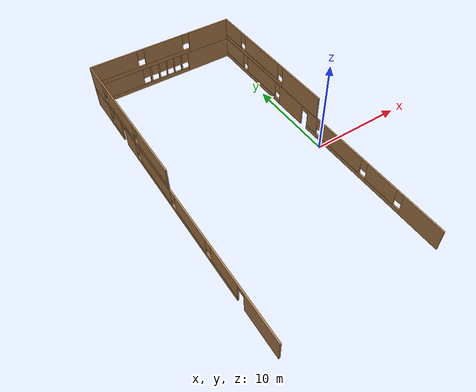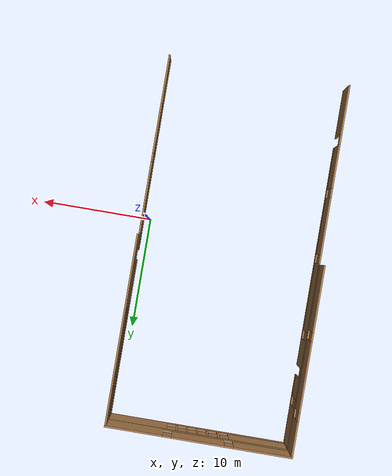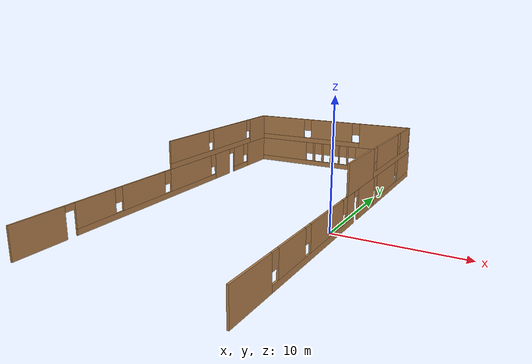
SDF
<sdf version="1.7">
 <model name="Floor_Plan_RS1">
  <pose>-35.0156 -19.3457 0 0 -0 0</pose>
  <link name="Wall_10">
   <pose>27.477 37.7444 0 0 -0 3.14159</pose>
   <visual name="Wall_10_Visual_0">
    <pose>-5.5452 0 1.25 0 -0 0</pose>
    <geometry><box><size>5.40959 0.15 2.5</size></box></geometry>
    <material>
     <script><uri>file://media/materials/scripts/gazebo.material</uri><name>Gazebo/Wood</name></script>
     <ambient>1 1 1 1</ambient>
    </material>
    <meta><layer>0</layer></meta>
   </visual>
   <collision name="Wall_10_Collision_0">
    <geometry><box><size>5.40959 0.15 2.5</size></box></geometry>
    <pose>-5.5452 0 1.25 0 -0 0</pose>
   </collision>
   <visual name="Wall_10_Visual_1">
    <pose>2.7048 0 0.25 0 -0 0</pose>
    <geometry><box><size>11.0904 0.15 0.5</size></box></geometry>
    <material>
     <script><uri>file://media/materials/scripts/gazebo.material</uri><name>Gazebo/Wood</name></script>
     <ambient>1 1 1 1</ambient>
    </material>
    <meta><layer>0</layer></meta>
   </visual>
   <collision name="Wall_10_Collision_1">
    <geometry><box><size>11.0904 0.15 0.5</size></box></geometry>
    <pose>2.7048 0 0.25 0 -0 0</pose>
   </collision>
   <visual name="Wall_10_Visual_2">
    <pose>-1.94818 0 1.5 0 -0 0</pose>
    <geometry><box><size>0.184446 0.15 2</size></box></geometry>
    <material>
     <script><uri>file://media/materials/scripts/gazebo.material</uri><name>Gazebo/Wood</name></script>
     <ambient>1 1 1 1</ambient>
    </material>
    <meta><layer>0</layer></meta>
   </visual>
   <collision name="Wall_10_Collision_2">
    <geometry><box><size>0.184446 0.15 2</size></box></geometry>
    <pose>-1.94818 0 1.5 0 -0 0</pose>
   </collision>
   <visual name="Wall_10_Visual_3">
    <pose>-0.994502 0 1.5 0 -0 0</pose>
    <geometry><box><size>0.122918 0.15 2</size></box></geometry>
    <material>
     <script><uri>file://media/materials/scripts/gazebo.material</uri><name>Gazebo/Wood</name></script>
     <ambient>1 1 1 1</ambient>
    </material>
    <meta><layer>0</layer></meta>
   </visual>
   <collision name="Wall_10_Collision_3">
    <geometry><box><size>0.122918 0.15 2</size></box></geometry>
    <pose>-0.994502 0 1.5 0 -0 0</pose>
   </collision>
   <visual name="Wall_10_Visual_4">
    <pose>-0.071584 0 1.5 0 -0 0</pose>
    <geometry><box><size>0.122918 0.15 2</size></box></geometry>
    <material>
     <script><uri>file://media/materials/scripts/gazebo.material</uri><name>Gazebo/Wood</name></script>
     <ambient>1 1 1 1</ambient>
    </material>
    <meta><layer>0</layer></meta>
   </visual>
   <collision name="Wall_10_Collision_4">
    <geometry><box><size>0.122918 0.15 2</size></box></geometry>
    <pose>-0.071584 0 1.5 0 -0 0</pose>
   </collision>
   <visual name="Wall_10_Visual_5">
    <pose>0.882098 0 1.5 0 -0 0</pose>
    <geometry><box><size>0.184447 0.15 2</size></box></geometry>
    <material>
     <script><uri>file://media/materials/scripts/gazebo.material</uri><name>Gazebo/Wood</name></script>
     <ambient>1 1 1 1</ambient>
    </material>
    <meta><layer>0</layer></meta>
   </visual>
   <collision name="Wall_10_Collision_5">
    <geometry><box><size>0.184447 0.15 2</size></box></geometry>
    <pose>0.882098 0 1.5 0 -0 0</pose>
   </collision>
   <visual name="Wall_10_Visual_6">
    <pose>1.88137 0 1.5 0 -0 0</pose>
    <geometry><box><size>0.2141 0.15 2</size></box></geometry>
    <material>
     <script><uri>file://media/materials/scripts/gazebo.material</uri><name>Gazebo/Wood</name></script>
     <ambient>1 1 1 1</ambient>
    </material>
    <meta><layer>0</layer></meta>
   </visual>
   <collision name="Wall_10_Collision_6">
    <geometry><box><size>0.2141 0.15 2</size></box></geometry>
    <pose>1.88137 0 1.5 0 -0 0</pose>
   </collision>
   <visual name="Wall_10_Visual_7">
    <pose>5.51921 0 1.5 0 -0 0</pose>
    <geometry><box><size>5.46158 0.15 2</size></box></geometry>
    <material>
     <script><uri>file://media/materials/scripts/gazebo.material</uri><name>Gazebo/Wood</name></script>
     <ambient>1 1 1 1</ambient>
    </material>
    <meta><layer>0</layer></meta>
   </visual>
   <collision name="Wall_10_Collision_7">
    <geometry><box><size>5.46158 0.15 2</size></box></geometry>
    <pose>5.51921 0 1.5 0 -0 0</pose>
   </collision>
   <visual name="Wall_10_Visual_8">
    <pose>-2.44041 0 1.9 0 -0 0</pose>
    <geometry><box><size>0.8 0.15 1.2</size></box></geometry>
    <material>
     <script><uri>file://media/materials/scripts/gazebo.material</uri><name>Gazebo/Wood</name></script>
     <ambient>1 1 1 1</ambient>
    </material>
    <meta><layer>0</layer></meta>
   </visual>
   <collision name="Wall_10_Collision_8">
    <geometry><box><size>0.8 0.15 1.2</size></box></geometry>
    <pose>-2.44041 0 1.9 0 -0 0</pose>
   </collision>
   <visual name="Wall_10_Visual_9">
    <pose>-1.45596 0 1.9 0 -0 0</pose>
    <geometry><box><size>0.8 0.15 1.2</size></box></geometry>
    <material>
     <script><uri>file://media/materials/scripts/gazebo.material</uri><name>Gazebo/Wood</name></script>
     <ambient>1 1 1 1</ambient>
    </material>
    <meta><layer>0</layer></meta>
   </visual>
   <collision name="Wall_10_Collision_9">
    <geometry><box><size>0.8 0.15 1.2</size></box></geometry>
    <pose>-1.45596 0 1.9 0 -0 0</pose>
   </collision>
   <visual name="Wall_10_Visual_10">
    <pose>-0.533043 0 1.9 0 -0 0</pose>
    <geometry><box><size>0.8 0.15 1.2</size></box></geometry>
    <material>
     <script><uri>file://media/materials/scripts/gazebo.material</uri><name>Gazebo/Wood</name></script>
     <ambient>1 1 1 1</ambient>
    </material>
    <meta><layer>0</layer></meta>
   </visual>
   <collision name="Wall_10_Collision_10">
    <geometry><box><size>0.8 0.15 1.2</size></box></geometry>
    <pose>-0.533043 0 1.9 0 -0 0</pose>
   </collision>
   <visual name="Wall_10_Visual_11">
    <pose>0.389875 0 1.9 0 -0 0</pose>
    <geometry><box><size>0.8 0.15 1.2</size></box></geometry>
    <material>
     <script><uri>file://media/materials/scripts/gazebo.material</uri><name>Gazebo/Wood</name></script>
     <ambient>1 1 1 1</ambient>
    </material>
    <meta><layer>0</layer></meta>
   </visual>
   <collision name="Wall_10_Collision_11">
    <geometry><box><size>0.8 0.15 1.2</size></box></geometry>
    <pose>0.389875 0 1.9 0 -0 0</pose>
   </collision>
   <visual name="Wall_10_Visual_12">
    <pose>1.37432 0 1.9 0 -0 0</pose>
    <geometry><box><size>0.8 0.15 1.2</size></box></geometry>
    <material>
     <script><uri>file://media/materials/scripts/gazebo.material</uri><name>Gazebo/Wood</name></script>
     <ambient>1 1 1 1</ambient>
    </material>
    <meta><layer>0</layer></meta>
   </visual>
   <collision name="Wall_10_Collision_12">
    <geometry><box><size>0.8 0.15 1.2</size></box></geometry>
    <pose>1.37432 0 1.9 0 -0 0</pose>
   </collision>
   <visual name="Wall_10_Visual_13">
    <pose>2.38842 0 1.9 0 -0 0</pose>
    <geometry><box><size>0.8 0.15 1.2</size></box></geometry>
    <material>
     <script><uri>file://media/materials/scripts/gazebo.material</uri><name>Gazebo/Wood</name></script>
     <ambient>1 1 1 1</ambient>
    </material>
    <meta><layer>0</layer></meta>
   </visual>
   <collision name="Wall_10_Collision_13">
    <geometry><box><size>0.8 0.15 1.2</size></box></geometry>
    <pose>2.38842 0 1.9 0 -0 0</pose>
   </collision>
  </link>
  <link name="Wall_11">
   <pose>19.3021 21.1944 0 0 -0 -1.5708</pose>
   <visual name="Wall_11_Visual_0">
    <pose>-14.7156 0 1.25 0 -0 0</pose>
    <geometry><box><size>3.81882 0.15 2.5</size></box></geometry>
    <material>
     <script><uri>file://media/materials/scripts/gazebo.material</uri><name>Gazebo/Wood</name></script>
     <ambient>1 1 1 1</ambient>
    </material>
    <meta><layer>0</layer></meta>
   </visual>
   <collision name="Wall_11_Collision_0">
    <geometry><box><size>3.81882 0.15 2.5</size></box></geometry>
    <pose>-14.7156 0 1.25 0 -0 0</pose>
   </collision>
   <visual name="Wall_11_Visual_1">
    <pose>-7.90963 0 1.25 0 -0 0</pose>
    <geometry><box><size>2.50541 0.15 2.5</size></box></geometry>
    <material>
     <script><uri>file://media/materials/scripts/gazebo.material</uri><name>Gazebo/Wood</name></script>
     <ambient>1 1 1 1</ambient>
    </material>
    <meta><layer>0</layer></meta>
   </visual>
   <collision name="Wall_11_Collision_1">
    <geometry><box><size>2.50541 0.15 2.5</size></box></geometry>
    <pose>-7.90963 0 1.25 0 -0 0</pose>
   </collision>
   <visual name="Wall_11_Visual_2">
    <pose>14.3708 0 1.25 0 -0 0</pose>
    <geometry><box><size>4.50842 0.15 2.5</size></box></geometry>
    <material>
     <script><uri>file://media/materials/scripts/gazebo.material</uri><name>Gazebo/Wood</name></script>
     <ambient>1 1 1 1</ambient>
    </material>
    <meta><layer>0</layer></meta>
   </visual>
   <collision name="Wall_11_Collision_2">
    <geometry><box><size>4.50842 0.15 2.5</size></box></geometry>
    <pose>14.3708 0 1.25 0 -0 0</pose>
   </collision>
   <visual name="Wall_11_Visual_3">
    <pose>-11.4343 0 0.25 0 -0 0</pose>
    <geometry><box><size>2.74384 0.15 0.5</size></box></geometry>
    <material>
     <script><uri>file://media/materials/scripts/gazebo.material</uri><name>Gazebo/Wood</name></script>
     <ambient>1 1 1 1</ambient>
    </material>
    <meta><layer>0</layer></meta>
   </visual>
   <collision name="Wall_11_Collision_3">
    <geometry><box><size>2.74384 0.15 0.5</size></box></geometry>
    <pose>-11.4343 0 0.25 0 -0 0</pose>
   </collision>
   <visual name="Wall_11_Visual_4">
    <pose>2.27982 0 0.25 0 -0 0</pose>
    <geometry><box><size>17.8735 0.15 0.5</size></box></geometry>
    <material>
     <script><uri>file://media/materials/scripts/gazebo.material</uri><name>Gazebo/Wood</name></script>
     <ambient>1 1 1 1</ambient>
    </material>
    <meta><layer>0</layer></meta>
   </visual>
   <collision name="Wall_11_Collision_4">
    <geometry><box><size>17.8735 0.15 0.5</size></box></geometry>
    <pose>2.27982 0 0.25 0 -0 0</pose>
   </collision>
   <visual name="Wall_11_Visual_5">
    <pose>-11.0343 0 1.5 0 -0 0</pose>
    <geometry><box><size>1.94384 0.15 2</size></box></geometry>
    <material>
     <script><uri>file://media/materials/scripts/gazebo.material</uri><name>Gazebo/Wood</name></script>
     <ambient>1 1 1 1</ambient>
    </material>
    <meta><layer>0</layer></meta>
   </visual>
   <collision name="Wall_11_Collision_5">
    <geometry><box><size>1.94384 0.15 2</size></box></geometry>
    <pose>-11.0343 0 1.5 0 -0 0</pose>
   </collision>
   <visual name="Wall_11_Visual_6">
    <pose>-11.0343 0 1.5 0 -0 0</pose>
    <geometry><box><size>1.94384 0.15 2</size></box></geometry>
    <material>
     <script><uri>file://media/materials/scripts/gazebo.material</uri><name>Gazebo/Wood</name></script>
     <ambient>1 1 1 1</ambient>
    </material>
    <meta><layer>0</layer></meta>
   </visual>
   <collision name="Wall_11_Collision_6">
    <geometry><box><size>1.94384 0.15 2</size></box></geometry>
    <pose>-11.0343 0 1.5 0 -0 0</pose>
   </collision>
   <visual name="Wall_11_Visual_7">
    <pose>-2.71707 0 1.5 0 -0 0</pose>
    <geometry><box><size>6.27973 0.15 2</size></box></geometry>
    <material>
     <script><uri>file://media/materials/scripts/gazebo.material</uri><name>Gazebo/Wood</name></script>
     <ambient>1 1 1 1</ambient>
    </material>
    <meta><layer>0</layer></meta>
   </visual>
   <collision name="Wall_11_Collision_7">
    <geometry><box><size>6.27973 0.15 2</size></box></geometry>
    <pose>-2.71707 0 1.5 0 -0 0</pose>
   </collision>
   <visual name="Wall_11_Visual_8">
    <pose>3.83674 0 1.5 0 -0 0</pose>
    <geometry><box><size>5.22788 0.15 2</size></box></geometry>
    <material>
     <script><uri>file://media/materials/scripts/gazebo.material</uri><name>Gazebo/Wood</name></script>
     <ambient>1 1 1 1</ambient>
    </material>
    <meta><layer>0</layer></meta>
   </visual>
   <collision name="Wall_11_Collision_8">
    <geometry><box><size>5.22788 0.15 2</size></box></geometry>
    <pose>3.83674 0 1.5 0 -0 0</pose>
   </collision>
   <visual name="Wall_11_Visual_9">
    <pose>9.23363 0 1.5 0 -0 0</pose>
    <geometry><box><size>3.9659 0.15 2</size></box></geometry>
    <material>
     <script><uri>file://media/materials/scripts/gazebo.material</uri><name>Gazebo/Wood</name></script>
     <ambient>1 1 1 1</ambient>
    </material>
    <meta><layer>0</layer></meta>
   </visual>
   <collision name="Wall_11_Collision_9">
    <geometry><box><size>3.9659 0.15 2</size></box></geometry>
    <pose>9.23363 0 1.5 0 -0 0</pose>
   </collision>
   <visual name="Wall_11_Visual_10">
    <pose>-12.4062 0 1.9 0 -0 0</pose>
    <geometry><box><size>0.8 0.15 1.2</size></box></geometry>
    <material>
     <script><uri>file://media/materials/scripts/gazebo.material</uri><name>Gazebo/Wood</name></script>
     <ambient>1 1 1 1</ambient>
    </material>
    <meta><layer>0</layer></meta>
   </visual>
   <collision name="Wall_11_Collision_10">
    <geometry><box><size>0.8 0.15 1.2</size></box></geometry>
    <pose>-12.4062 0 1.9 0 -0 0</pose>
   </collision>
   <visual name="Wall_11_Visual_11">
    <pose>-6.25693 0 1.9 0 -0 0</pose>
    <geometry><box><size>0.8 0.15 1.2</size></box></geometry>
    <material>
     <script><uri>file://media/materials/scripts/gazebo.material</uri><name>Gazebo/Wood</name></script>
     <ambient>1 1 1 1</ambient>
    </material>
    <meta><layer>0</layer></meta>
   </visual>
   <collision name="Wall_11_Collision_11">
    <geometry><box><size>0.8 0.15 1.2</size></box></geometry>
    <pose>-6.25693 0 1.9 0 -0 0</pose>
   </collision>
   <visual name="Wall_11_Visual_12">
    <pose>0.822797 0 1.9 0 -0 0</pose>
    <geometry><box><size>0.8 0.15 1.2</size></box></geometry>
    <material>
     <script><uri>file://media/materials/scripts/gazebo.material</uri><name>Gazebo/Wood</name></script>
     <ambient>1 1 1 1</ambient>
    </material>
    <meta><layer>0</layer></meta>
   </visual>
   <collision name="Wall_11_Collision_12">
    <geometry><box><size>0.8 0.15 1.2</size></box></geometry>
    <pose>0.822797 0 1.9 0 -0 0</pose>
   </collision>
   <visual name="Wall_11_Visual_13">
    <pose>6.85068 0 1.9 0 -0 0</pose>
    <geometry><box><size>0.8 0.15 1.2</size></box></geometry>
    <material>
     <script><uri>file://media/materials/scripts/gazebo.material</uri><name>Gazebo/Wood</name></script>
     <ambient>1 1 1 1</ambient>
    </material>
    <meta><layer>0</layer></meta>
   </visual>
   <collision name="Wall_11_Collision_13">
    <geometry><box><size>0.8 0.15 1.2</size></box></geometry>
    <pose>6.85068 0 1.9 0 -0 0</pose>
   </collision>
   <visual name="Wall_11_Visual_14">
    <pose>-9.61233 0 2.25 0 -0 0</pose>
    <geometry><box><size>0.9 0.15 0.5</size></box></geometry>
    <material>
     <script><uri>file://media/materials/scripts/gazebo.material</uri><name>Gazebo/Wood</name></script>
     <ambient>1 1 1 1</ambient>
    </material>
    <meta><layer>0</layer></meta>
   </visual>
   <collision name="Wall_11_Collision_14">
    <geometry><box><size>0.9 0.15 0.5</size></box></geometry>
    <pose>-9.61233 0 2.25 0 -0 0</pose>
   </collision>
   <visual name="Wall_11_Visual_15">
    <pose>-9.61233 0 2.25 0 -0 0</pose>
    <geometry><box><size>0.9 0.15 0.5</size></box></geometry>
    <material>
     <script><uri>file://media/materials/scripts/gazebo.material</uri><name>Gazebo/Wood</name></script>
     <ambient>1 1 1 1</ambient>
    </material>
    <meta><layer>0</layer></meta>
   </visual>
   <collision name="Wall_11_Collision_15">
    <geometry><box><size>0.9 0.15 0.5</size></box></geometry>
    <pose>-9.61233 0 2.25 0 -0 0</pose>
   </collision>
   <visual name="Wall_11_Visual_16">
    <pose>11.6666 0 2.25 0 -0 0</pose>
    <geometry><box><size>0.9 0.15 0.5</size></box></geometry>
    <material>
     <script><uri>file://media/materials/scripts/gazebo.material</uri><name>Gazebo/Wood</name></script>
     <ambient>1 1 1 1</ambient>
    </material>
    <meta><layer>0</layer></meta>
   </visual>
   <collision name="Wall_11_Collision_16">
    <geometry><box><size>0.9 0.15 0.5</size></box></geometry>
    <pose>11.6666 0 2.25 0 -0 0</pose>
   </collision>
  </link>
  <link name="Wall_13">
   <pose>35.6521 21.3194 0 0 -0 1.5708</pose>
   <visual name="Wall_13_Visual_0">
    <pose>-14.5211 0 1.25 0 -0 0</pose>
    <geometry><box><size>4.45776 0.15 2.5</size></box></geometry>
    <material>
     <script><uri>file://media/materials/scripts/gazebo.material</uri><name>Gazebo/Wood</name></script>
     <ambient>1 1 1 1</ambient>
    </material>
    <meta><layer>0</layer></meta>
   </visual>
   <collision name="Wall_13_Collision_0">
    <geometry><box><size>4.45776 0.15 2.5</size></box></geometry>
    <pose>-14.5211 0 1.25 0 -0 0</pose>
   </collision>
   <visual name="Wall_13_Visual_1">
    <pose>3.79024 0 1.25 0 -0 0</pose>
    <geometry><box><size>3.82612 0.15 2.5</size></box></geometry>
    <material>
     <script><uri>file://media/materials/scripts/gazebo.material</uri><name>Gazebo/Wood</name></script>
     <ambient>1 1 1 1</ambient>
    </material>
    <meta><layer>0</layer></meta>
   </visual>
   <collision name="Wall_13_Collision_1">
    <geometry><box><size>3.82612 0.15 2.5</size></box></geometry>
    <pose>3.79024 0 1.25 0 -0 0</pose>
   </collision>
   <visual name="Wall_13_Visual_2">
    <pose>-5.65753 0 0.25 0 -0 0</pose>
    <geometry><box><size>13.2694 0.15 0.5</size></box></geometry>
    <material>
     <script><uri>file://media/materials/scripts/gazebo.material</uri><name>Gazebo/Wood</name></script>
     <ambient>1 1 1 1</ambient>
    </material>
    <meta><layer>0</layer></meta>
   </visual>
   <collision name="Wall_13_Collision_2">
    <geometry><box><size>13.2694 0.15 0.5</size></box></geometry>
    <pose>-5.65753 0 0.25 0 -0 0</pose>
   </collision>
   <visual name="Wall_13_Visual_3">
    <pose>11.2266 0 0.25 0 -0 0</pose>
    <geometry><box><size>11.0467 0.15 0.5</size></box></geometry>
    <material>
     <script><uri>file://media/materials/scripts/gazebo.material</uri><name>Gazebo/Wood</name></script>
     <ambient>1 1 1 1</ambient>
    </material>
    <meta><layer>0</layer></meta>
   </visual>
   <collision name="Wall_13_Collision_3">
    <geometry><box><size>11.0467 0.15 0.5</size></box></geometry>
    <pose>11.2266 0 0.25 0 -0 0</pose>
   </collision>
   <visual name="Wall_13_Visual_4">
    <pose>-9.66718 0 1.5 0 -0 0</pose>
    <geometry><box><size>3.65011 0.15 2</size></box></geometry>
    <material>
     <script><uri>file://media/materials/scripts/gazebo.material</uri><name>Gazebo/Wood</name></script>
     <ambient>1 1 1 1</ambient>
    </material>
    <meta><layer>0</layer></meta>
   </visual>
   <collision name="Wall_13_Collision_4">
    <geometry><box><size>3.65011 0.15 2</size></box></geometry>
    <pose>-9.66718 0 1.5 0 -0 0</pose>
   </collision>
   <visual name="Wall_13_Visual_5">
    <pose>-4.20568 0 1.5 0 -0 0</pose>
    <geometry><box><size>5.67289 0.15 2</size></box></geometry>
    <material>
     <script><uri>file://media/materials/scripts/gazebo.material</uri><name>Gazebo/Wood</name></script>
     <ambient>1 1 1 1</ambient>
    </material>
    <meta><layer>0</layer></meta>
   </visual>
   <collision name="Wall_13_Collision_5">
    <geometry><box><size>5.67289 0.15 2</size></box></geometry>
    <pose>-4.20568 0 1.5 0 -0 0</pose>
   </collision>
   <visual name="Wall_13_Visual_6">
    <pose>0.203974 0 1.5 0 -0 0</pose>
    <geometry><box><size>1.54642 0.15 2</size></box></geometry>
    <material>
     <script><uri>file://media/materials/scripts/gazebo.material</uri><name>Gazebo/Wood</name></script>
     <ambient>1 1 1 1</ambient>
    </material>
    <meta><layer>0</layer></meta>
   </visual>
   <collision name="Wall_13_Collision_6">
    <geometry><box><size>1.54642 0.15 2</size></box></geometry>
    <pose>0.203974 0 1.5 0 -0 0</pose>
   </collision>
   <visual name="Wall_13_Visual_7">
    <pose>0.203974 0 1.5 0 -0 0</pose>
    <geometry><box><size>1.54642 0.15 2</size></box></geometry>
    <material>
     <script><uri>file://media/materials/scripts/gazebo.material</uri><name>Gazebo/Wood</name></script>
     <ambient>1 1 1 1</ambient>
    </material>
    <meta><layer>0</layer></meta>
   </visual>
   <collision name="Wall_13_Collision_7">
    <geometry><box><size>1.54642 0.15 2</size></box></geometry>
    <pose>0.203974 0 1.5 0 -0 0</pose>
   </collision>
   <visual name="Wall_13_Visual_8">
    <pose>9.21046 0 1.5 0 -0 0</pose>
    <geometry><box><size>5.41432 0.15 2</size></box></geometry>
    <material>
     <script><uri>file://media/materials/scripts/gazebo.material</uri><name>Gazebo/Wood</name></script>
     <ambient>1 1 1 1</ambient>
    </material>
    <meta><layer>0</layer></meta>
   </visual>
   <collision name="Wall_13_Collision_8">
    <geometry><box><size>5.41432 0.15 2</size></box></geometry>
    <pose>9.21046 0 1.5 0 -0 0</pose>
   </collision>
   <visual name="Wall_13_Visual_9">
    <pose>14.7338 0 1.5 0 -0 0</pose>
    <geometry><box><size>4.03238 0.15 2</size></box></geometry>
    <material>
     <script><uri>file://media/materials/scripts/gazebo.material</uri><name>Gazebo/Wood</name></script>
     <ambient>1 1 1 1</ambient>
    </material>
    <meta><layer>0</layer></meta>
   </visual>
   <collision name="Wall_13_Collision_9">
    <geometry><box><size>4.03238 0.15 2</size></box></geometry>
    <pose>14.7338 0 1.5 0 -0 0</pose>
   </collision>
   <visual name="Wall_13_Visual_10">
    <pose>-11.8922 0 1.9 0 -0 0</pose>
    <geometry><box><size>0.8 0.15 1.2</size></box></geometry>
    <material>
     <script><uri>file://media/materials/scripts/gazebo.material</uri><name>Gazebo/Wood</name></script>
     <ambient>1 1 1 1</ambient>
    </material>
    <meta><layer>0</layer></meta>
   </visual>
   <collision name="Wall_13_Collision_10">
    <geometry><box><size>0.8 0.15 1.2</size></box></geometry>
    <pose>-11.8922 0 1.9 0 -0 0</pose>
   </collision>
   <visual name="Wall_13_Visual_11">
    <pose>6.1033 0 1.9 0 -0 0</pose>
    <geometry><box><size>0.8 0.15 1.2</size></box></geometry>
    <material>
     <script><uri>file://media/materials/scripts/gazebo.material</uri><name>Gazebo/Wood</name></script>
     <ambient>1 1 1 1</ambient>
    </material>
    <meta><layer>0</layer></meta>
   </visual>
   <collision name="Wall_13_Collision_11">
    <geometry><box><size>0.8 0.15 1.2</size></box></geometry>
    <pose>6.1033 0 1.9 0 -0 0</pose>
   </collision>
   <visual name="Wall_13_Visual_12">
    <pose>-7.44213 0 1.9 0 -0 0</pose>
    <geometry><box><size>0.8 0.15 1.2</size></box></geometry>
    <material>
     <script><uri>file://media/materials/scripts/gazebo.material</uri><name>Gazebo/Wood</name></script>
     <ambient>1 1 1 1</ambient>
    </material>
    <meta><layer>0</layer></meta>
   </visual>
   <collision name="Wall_13_Collision_12">
    <geometry><box><size>0.8 0.15 1.2</size></box></geometry>
    <pose>-7.44213 0 1.9 0 -0 0</pose>
   </collision>
   <visual name="Wall_13_Visual_13">
    <pose>-0.969234 0 1.9 0 -0 0</pose>
    <geometry><box><size>0.8 0.15 1.2</size></box></geometry>
    <material>
     <script><uri>file://media/materials/scripts/gazebo.material</uri><name>Gazebo/Wood</name></script>
     <ambient>1 1 1 1</ambient>
    </material>
    <meta><layer>0</layer></meta>
   </visual>
   <collision name="Wall_13_Collision_13">
    <geometry><box><size>0.8 0.15 1.2</size></box></geometry>
    <pose>-0.969234 0 1.9 0 -0 0</pose>
   </collision>
   <visual name="Wall_13_Visual_14">
    <pose>12.3176 0 1.9 0 -0 0</pose>
    <geometry><box><size>0.8 0.15 1.2</size></box></geometry>
    <material>
     <script><uri>file://media/materials/scripts/gazebo.material</uri><name>Gazebo/Wood</name></script>
     <ambient>1 1 1 1</ambient>
    </material>
    <meta><layer>0</layer></meta>
   </visual>
   <collision name="Wall_13_Collision_14">
    <geometry><box><size>0.8 0.15 1.2</size></box></geometry>
    <pose>12.3176 0 1.9 0 -0 0</pose>
   </collision>
   <visual name="Wall_13_Visual_15">
    <pose>1.42718 0 2.25 0 -0 0</pose>
    <geometry><box><size>0.9 0.15 0.5</size></box></geometry>
    <material>
     <script><uri>file://media/materials/scripts/gazebo.material</uri><name>Gazebo/Wood</name></script>
     <ambient>1 1 1 1</ambient>
    </material>
    <meta><layer>0</layer></meta>
   </visual>
   <collision name="Wall_13_Collision_15">
    <geometry><box><size>0.9 0.15 0.5</size></box></geometry>
    <pose>1.42718 0 2.25 0 -0 0</pose>
   </collision>
   <visual name="Wall_13_Visual_16">
    <pose>1.42718 0 2.25 0 -0 0</pose>
    <geometry><box><size>0.9 0.15 0.5</size></box></geometry>
    <material>
     <script><uri>file://media/materials/scripts/gazebo.material</uri><name>Gazebo/Wood</name></script>
     <ambient>1 1 1 1</ambient>
    </material>
    <meta><layer>0</layer></meta>
   </visual>
   <collision name="Wall_13_Collision_16">
    <geometry><box><size>0.9 0.15 0.5</size></box></geometry>
    <pose>1.42718 0 2.25 0 -0 0</pose>
   </collision>
  </link>
  <link name="Wall_21">
   <pose>27.477 37.7444 2.5 0 -0 3.14159</pose>
   <visual name="Wall_21_Visual_0">
    <pose>-5.70716 0 1.25 0 -0 0</pose>
    <geometry><box><size>5.08567 0.15 2.5</size></box></geometry>
    <material>
     <script><uri>file://media/materials/scripts/gazebo.material</uri><name>Gazebo/Wood</name></script>
     <ambient>1 1 1 1</ambient>
    </material>
    <meta><layer>1</layer></meta>
   </visual>
   <collision name="Wall_21_Collision_0">
    <geometry><box><size>5.08567 0.15 2.5</size></box></geometry>
    <pose>-5.70716 0 1.25 0 -0 0</pose>
   </collision>
   <visual name="Wall_21_Visual_1">
    <pose>2.54284 0 0.25 0 -0 0</pose>
    <geometry><box><size>11.4143 0.15 0.5</size></box></geometry>
    <material>
     <script><uri>file://media/materials/scripts/gazebo.material</uri><name>Gazebo/Wood</name></script>
     <ambient>1 1 1 1</ambient>
    </material>
    <meta><layer>1</layer></meta>
   </visual>
   <collision name="Wall_21_Collision_1">
    <geometry><box><size>11.4143 0.15 0.5</size></box></geometry>
    <pose>2.54284 0 0.25 0 -0 0</pose>
   </collision>
   <visual name="Wall_21_Visual_2">
    <pose>-0.04268 0 1.5 0 -0 0</pose>
    <geometry><box><size>4.6433 0.15 2</size></box></geometry>
    <material>
     <script><uri>file://media/materials/scripts/gazebo.material</uri><name>Gazebo/Wood</name></script>
     <ambient>1 1 1 1</ambient>
    </material>
    <meta><layer>1</layer></meta>
   </visual>
   <collision name="Wall_21_Collision_2">
    <geometry><box><size>4.6433 0.15 2</size></box></geometry>
    <pose>-0.04268 0 1.5 0 -0 0</pose>
   </collision>
   <visual name="Wall_21_Visual_3">
    <pose>5.66448 0 1.5 0 -0 0</pose>
    <geometry><box><size>5.17103 0.15 2</size></box></geometry>
    <material>
     <script><uri>file://media/materials/scripts/gazebo.material</uri><name>Gazebo/Wood</name></script>
     <ambient>1 1 1 1</ambient>
    </material>
    <meta><layer>1</layer></meta>
   </visual>
   <collision name="Wall_21_Collision_3">
    <geometry><box><size>5.17103 0.15 2</size></box></geometry>
    <pose>5.66448 0 1.5 0 -0 0</pose>
   </collision>
   <visual name="Wall_21_Visual_4">
    <pose>-2.76433 0 1.9 0 -0 0</pose>
    <geometry><box><size>0.8 0.15 1.2</size></box></geometry>
    <material>
     <script><uri>file://media/materials/scripts/gazebo.material</uri><name>Gazebo/Wood</name></script>
     <ambient>1 1 1 1</ambient>
    </material>
    <meta><layer>1</layer></meta>
   </visual>
   <collision name="Wall_21_Collision_4">
    <geometry><box><size>0.8 0.15 1.2</size></box></geometry>
    <pose>-2.76433 0 1.9 0 -0 0</pose>
   </collision>
   <visual name="Wall_21_Visual_5">
    <pose>2.67897 0 1.9 0 -0 0</pose>
    <geometry><box><size>0.8 0.15 1.2</size></box></geometry>
    <material>
     <script><uri>file://media/materials/scripts/gazebo.material</uri><name>Gazebo/Wood</name></script>
     <ambient>1 1 1 1</ambient>
    </material>
    <meta><layer>1</layer></meta>
   </visual>
   <collision name="Wall_21_Collision_5">
    <geometry><box><size>0.8 0.15 1.2</size></box></geometry>
    <pose>2.67897 0 1.9 0 -0 0</pose>
   </collision>
  </link>
  <link name="Wall_22">
   <pose>19.2941 29.3615 2.5 0 -0 -1.57174</pose>
   <visual name="Wall_22_Visual_0">
    <pose>-6.85779 0 1.25 0 -0 0</pose>
    <geometry><box><size>3.20027 0.15 2.5</size></box></geometry>
    <material>
     <script><uri>file://media/materials/scripts/gazebo.material</uri><name>Gazebo/Wood</name></script>
     <ambient>1 1 1 1</ambient>
    </material>
    <meta><layer>1</layer></meta>
   </visual>
   <collision name="Wall_22_Collision_0">
    <geometry><box><size>3.20027 0.15 2.5</size></box></geometry>
    <pose>-6.85779 0 1.25 0 -0 0</pose>
   </collision>
   <visual name="Wall_22_Visual_1">
    <pose>1.60013 0 0.25 0 -0 0</pose>
    <geometry><box><size>13.7156 0.15 0.5</size></box></geometry>
    <material>
     <script><uri>file://media/materials/scripts/gazebo.material</uri><name>Gazebo/Wood</name></script>
     <ambient>1 1 1 1</ambient>
    </material>
    <meta><layer>1</layer></meta>
   </visual>
   <collision name="Wall_22_Collision_1">
    <geometry><box><size>13.7156 0.15 0.5</size></box></geometry>
    <pose>1.60013 0 0.25 0 -0 0</pose>
   </collision>
   <visual name="Wall_22_Visual_2">
    <pose>-1.34512 0 1.5 0 -0 0</pose>
    <geometry><box><size>6.22506 0.15 2</size></box></geometry>
    <material>
     <script><uri>file://media/materials/scripts/gazebo.material</uri><name>Gazebo/Wood</name></script>
     <ambient>1 1 1 1</ambient>
    </material>
    <meta><layer>1</layer></meta>
   </visual>
   <collision name="Wall_22_Collision_2">
    <geometry><box><size>6.22506 0.15 2</size></box></geometry>
    <pose>-1.34512 0 1.5 0 -0 0</pose>
   </collision>
   <visual name="Wall_22_Visual_3">
    <pose>5.51267 0 1.5 0 -0 0</pose>
    <geometry><box><size>5.89051 0.15 2</size></box></geometry>
    <material>
     <script><uri>file://media/materials/scripts/gazebo.material</uri><name>Gazebo/Wood</name></script>
     <ambient>1 1 1 1</ambient>
    </material>
    <meta><layer>1</layer></meta>
   </visual>
   <collision name="Wall_22_Collision_3">
    <geometry><box><size>5.89051 0.15 2</size></box></geometry>
    <pose>5.51267 0 1.5 0 -0 0</pose>
   </collision>
   <visual name="Wall_22_Visual_4">
    <pose>-4.85765 0 1.9 0 -0 0</pose>
    <geometry><box><size>0.8 0.15 1.2</size></box></geometry>
    <material>
     <script><uri>file://media/materials/scripts/gazebo.material</uri><name>Gazebo/Wood</name></script>
     <ambient>1 1 1 1</ambient>
    </material>
    <meta><layer>1</layer></meta>
   </visual>
   <collision name="Wall_22_Collision_4">
    <geometry><box><size>0.8 0.15 1.2</size></box></geometry>
    <pose>-4.85765 0 1.9 0 -0 0</pose>
   </collision>
   <visual name="Wall_22_Visual_5">
    <pose>2.16741 0 1.9 0 -0 0</pose>
    <geometry><box><size>0.8 0.15 1.2</size></box></geometry>
    <material>
     <script><uri>file://media/materials/scripts/gazebo.material</uri><name>Gazebo/Wood</name></script>
     <ambient>1 1 1 1</ambient>
    </material>
    <meta><layer>1</layer></meta>
   </visual>
   <collision name="Wall_22_Collision_5">
    <geometry><box><size>0.8 0.15 1.2</size></box></geometry>
    <pose>2.16741 0 1.9 0 -0 0</pose>
   </collision>
  </link>
  <link name="Wall_24">
   <pose>35.6362 29.2786 2.5 0 -0 1.5708</pose>
   <visual name="Wall_24_Visual_0">
    <pose>-5.4763 0 1.25 0 -0 0</pose>
    <geometry><box><size>5.7974 0.15 2.5</size></box></geometry>
    <material>
     <script><uri>file://media/materials/scripts/gazebo.material</uri><name>Gazebo/Wood</name></script>
     <ambient>1 1 1 1</ambient>
    </material>
    <meta><layer>1</layer></meta>
   </visual>
   <collision name="Wall_24_Collision_0">
    <geometry><box><size>5.7974 0.15 2.5</size></box></geometry>
    <pose>-5.4763 0 1.25 0 -0 0</pose>
   </collision>
   <visual name="Wall_24_Visual_1">
    <pose>2.8987 0 0.25 0 -0 0</pose>
    <geometry><box><size>10.9526 0.15 0.5</size></box></geometry>
    <material>
     <script><uri>file://media/materials/scripts/gazebo.material</uri><name>Gazebo/Wood</name></script>
     <ambient>1 1 1 1</ambient>
    </material>
    <meta><layer>1</layer></meta>
   </visual>
   <collision name="Wall_24_Collision_1">
    <geometry><box><size>10.9526 0.15 0.5</size></box></geometry>
    <pose>2.8987 0 0.25 0 -0 0</pose>
   </collision>
   <visual name="Wall_24_Visual_2">
    <pose>1.33495 0 1.5 0 -0 0</pose>
    <geometry><box><size>6.22511 0.15 2</size></box></geometry>
    <material>
     <script><uri>file://media/materials/scripts/gazebo.material</uri><name>Gazebo/Wood</name></script>
     <ambient>1 1 1 1</ambient>
    </material>
    <meta><layer>1</layer></meta>
   </visual>
   <collision name="Wall_24_Collision_2">
    <geometry><box><size>6.22511 0.15 2</size></box></geometry>
    <pose>1.33495 0 1.5 0 -0 0</pose>
   </collision>
   <visual name="Wall_24_Visual_3">
    <pose>6.81126 0 1.5 0 -0 0</pose>
    <geometry><box><size>3.12749 0.15 2</size></box></geometry>
    <material>
     <script><uri>file://media/materials/scripts/gazebo.material</uri><name>Gazebo/Wood</name></script>
     <ambient>1 1 1 1</ambient>
    </material>
    <meta><layer>1</layer></meta>
   </visual>
   <collision name="Wall_24_Collision_3">
    <geometry><box><size>3.12749 0.15 2</size></box></geometry>
    <pose>6.81126 0 1.5 0 -0 0</pose>
   </collision>
   <visual name="Wall_24_Visual_4">
    <pose>-2.1776 0 1.9 0 -0 0</pose>
    <geometry><box><size>0.8 0.15 1.2</size></box></geometry>
    <material>
     <script><uri>file://media/materials/scripts/gazebo.material</uri><name>Gazebo/Wood</name></script>
     <ambient>1 1 1 1</ambient>
    </material>
    <meta><layer>1</layer></meta>
   </visual>
   <collision name="Wall_24_Collision_4">
    <geometry><box><size>0.8 0.15 1.2</size></box></geometry>
    <pose>-2.1776 0 1.9 0 -0 0</pose>
   </collision>
   <visual name="Wall_24_Visual_5">
    <pose>4.84751 0 1.9 0 -0 0</pose>
    <geometry><box><size>0.8 0.15 1.2</size></box></geometry>
    <material>
     <script><uri>file://media/materials/scripts/gazebo.material</uri><name>Gazebo/Wood</name></script>
     <ambient>1 1 1 1</ambient>
    </material>
    <meta><layer>1</layer></meta>
   </visual>
   <collision name="Wall_24_Collision_5">
    <geometry><box><size>0.8 0.15 1.2</size></box></geometry>
    <pose>4.84751 0 1.9 0 -0 0</pose>
   </collision>
  </link>
  <static>1</static>
 </model>
</sdf>
